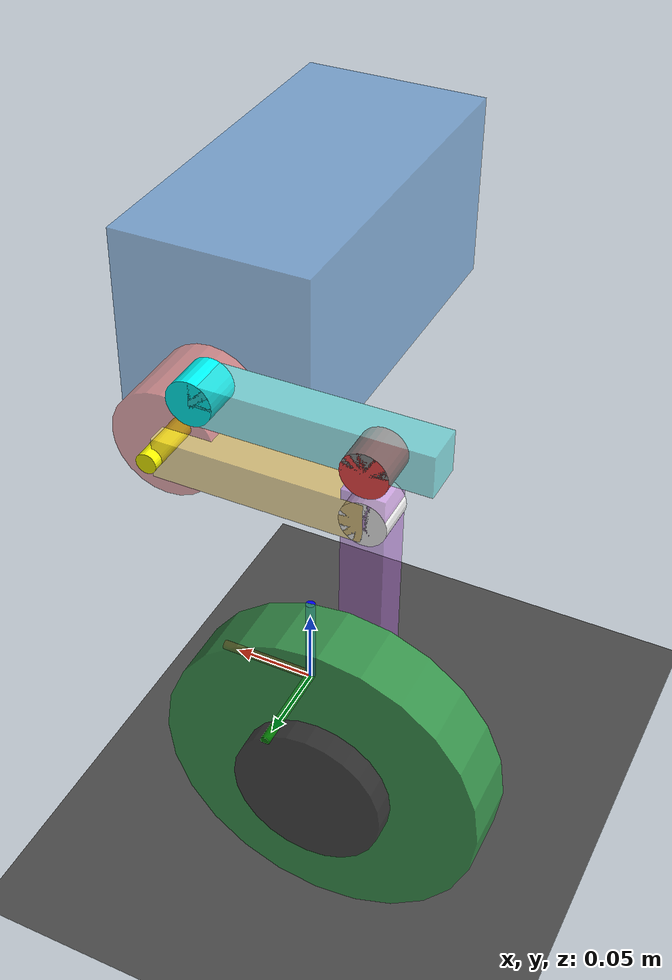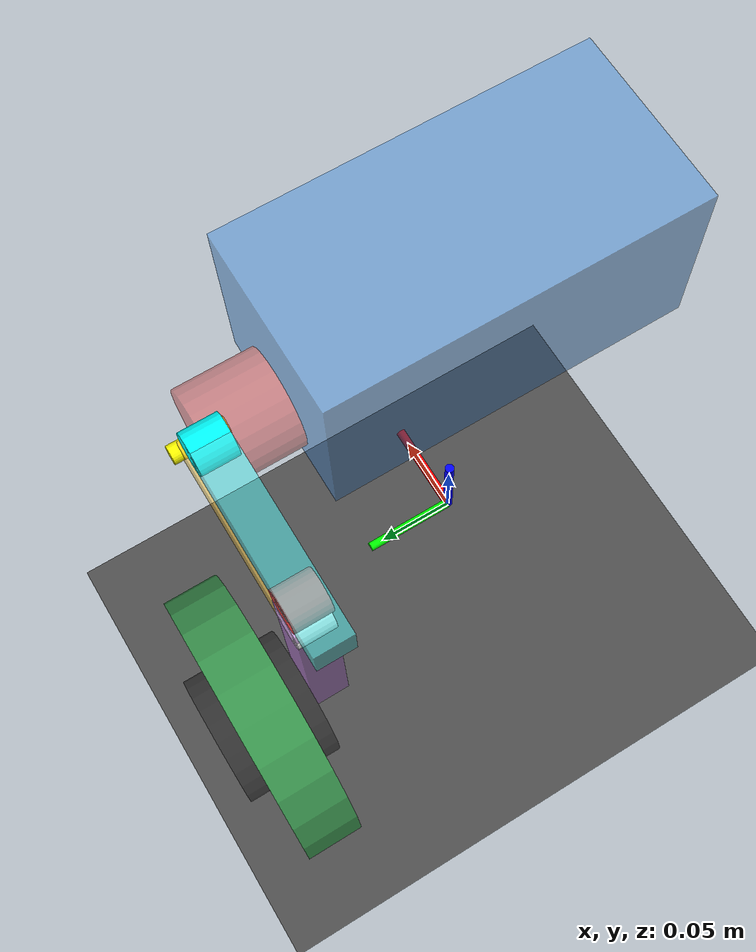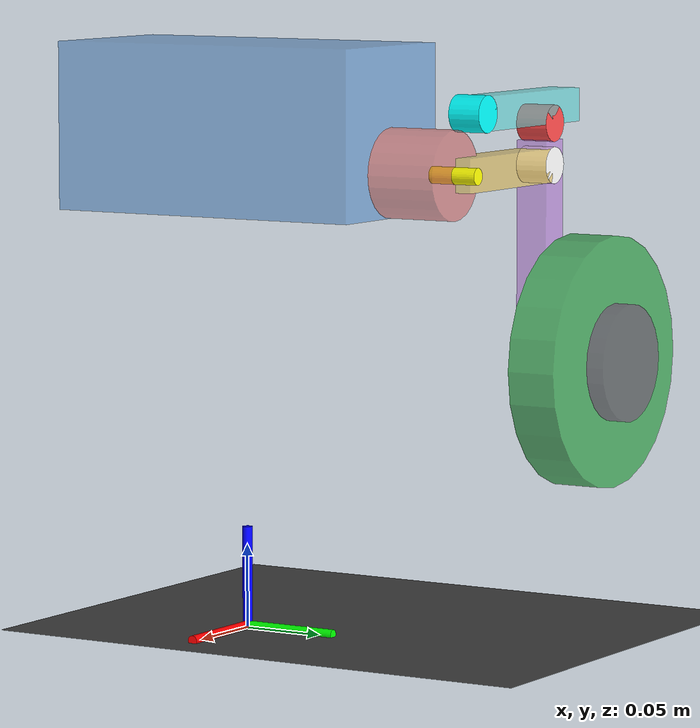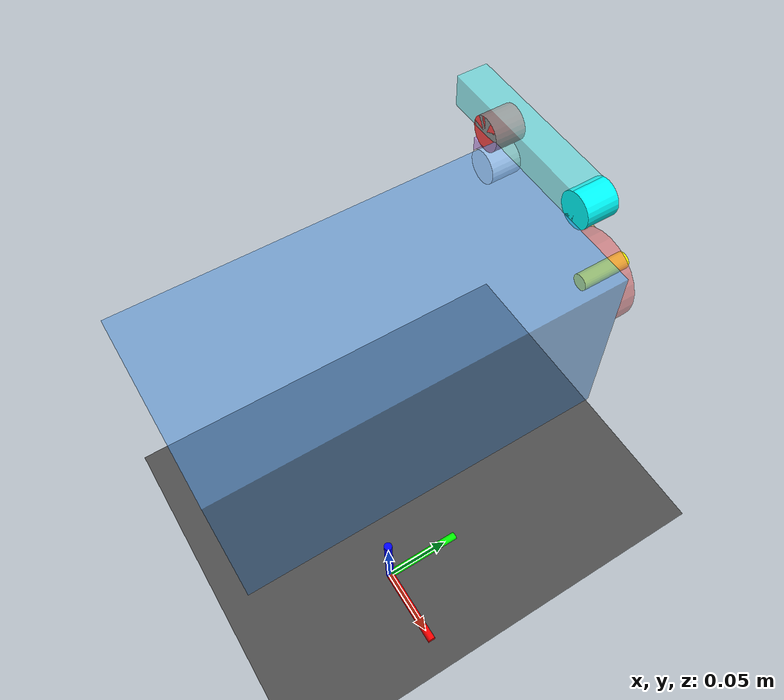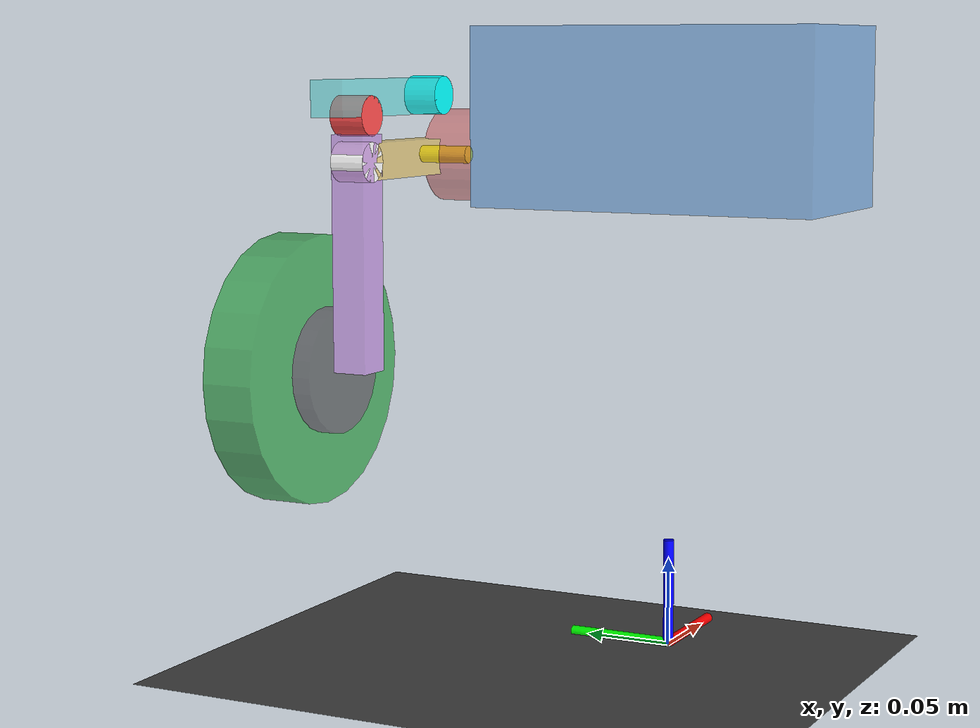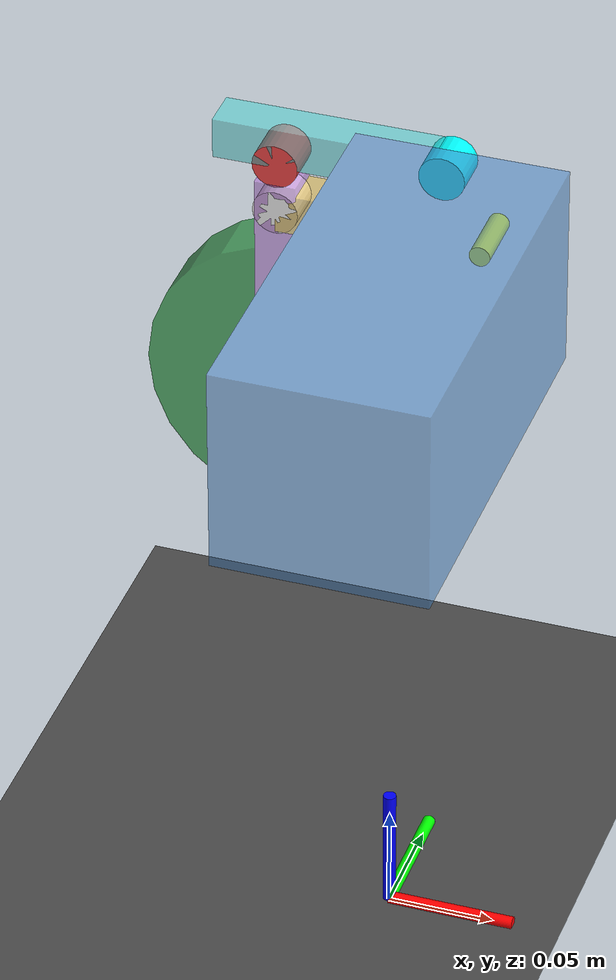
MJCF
<mujoco model="wheeled_leg_robot_drop">

  <option gravity="0 0 -9.81" timestep="0.00005"/>

  <visual>
    <global offwidth="1280" offheight="720" azimuth="270" elevation="0"/>
  </visual>

  <worldbody>

    <light name="main" pos="0 -1 1" dir="0 1 -1" diffuse="0.8 0.8 0.8"/>
    <light name="fill" pos="0  1 1" dir="0 -1 -1" diffuse="0.3 0.3 0.3"/>

    <!-- Ground plane — collides with wheel -->
    <geom name="ground" type="plane" pos="0 0 0" size="2 2 0.01"
          rgba="0.3 0.3 0.3 1" contype="1" conaffinity="1" friction="0.8 0.005 0.0001"/>

    <!-- XYZ axis markers at origin (visual only) -->
    <geom name="axis_x" type="cylinder" fromto="0 0 0.001  0.06 0 0.001"
          size="0.003" rgba="1 0 0 1" contype="0" conaffinity="0" mass="0"/>
    <geom name="axis_y" type="cylinder" fromto="0 0 0.001  0 0.06 0.001"
          size="0.003" rgba="0 1 0 1" contype="0" conaffinity="0" mass="0"/>
    <geom name="axis_z" type="cylinder" fromto="0 0 0.001  0 0 0.061"
          size="0.003" rgba="0 0 1 1" contype="0" conaffinity="0" mass="0"/>

    <!-- ── Body box — slides vertically only ──────────────────────────── -->
    <body name="box" pos="0 0 0.30">

      <!-- Vertical slide joint: 1 DOF up/down, rotation locked at 0 -->
      <joint name="body_slide" type="slide" axis="0 0 1" pos="0 0 0"/>

      <geom name="box_geom" type="box"
            size="0.05 0.10 0.05"
            rgba="0.29 0.56 0.85 0.55"
            contype="0" conaffinity="0"
            mass="0.477"/>

      <!-- Hip motor AK45-10: 260 g, Φ53 mm × 43 mm cylinder -->
      <geom name="motor_geom" type="cylinder"
            pos="0 0.1215 -0.0235"
            euler="90 0 0"
            size="0.0265 0.0215"
            rgba="0.87 0.36 0.36 0.55"
            contype="0" conaffinity="0"
            mass="0.260"/>

      <!-- ── Passive coupler pivot F ─────────────────────────────────── -->
      <!-- F = A + (−15 mm X, +2.5 mm Z) in box frame -->
      <body name="coupler" pos="-0.020 0.1430 0.01116">

        <joint name="hinge_F" type="hinge"
               axis="0 1 0"
               pos="0 0 0"
               damping="0.001"/>

        <!-- 608 bearing at F: OD=22 mm, width=7 mm -->
        <geom type="cylinder" pos="0 0 0" euler="90 0 0" size="0.011 0.010"
              rgba="0 1 1 0.9" contype="0" conaffinity="0" mass="0"/>
        <geom name="coupler_geom" type="box"
              pos="-0.055 0 0"
              size="0.055 0.01 0.01"
              rgba="0.30 0.90 0.90 0.55"
              contype="0" conaffinity="0"
              mass="0.015"/>

      </body><!-- coupler -->

      <!-- ── Femur ─────────────────────────────────────────────────────── -->
      <body name="femur" pos="0 0.1430 -0.0235">

        <joint name="hip" type="hinge"
               axis="0 1 0"
               pos="0 0 0"
               range="-180 180"
               armature="0.01"
               damping="0.05"/>

        <geom type="cylinder" pos="0 0 0" euler="90 0 0" size="0.005 0.015"
              rgba="1 1 0 0.9" contype="0" conaffinity="0" mass="0"/>
        <geom name="femur_geom" type="box"
              pos="-0.05 0 0"
              size="0.05 0.01 0.01"
              rgba="0.94 0.75 0.25 0.55"
              contype="0" conaffinity="0"
              mass="0.025"/>
        <!-- 608 bearing at C (knee): OD=22 mm, width=7 mm -->
        <geom type="cylinder" pos="-0.1 0 0" euler="90 0 0" size="0.011 0.010"
              rgba="1 1 1 0.9" contype="0" conaffinity="0" mass="0"/>

        <!-- ── Tibia ───────────────────────────────────────────────────── -->
        <body name="tibia" pos="-0.1 0 0">

          <joint name="knee_joint" type="hinge"
                 axis="0 1 0"
                 pos="0 0 0"
                 range="-180 180"
                 damping="0.001"/>

          <geom name="tibia_geom" type="box"
                pos="0 0 -0.05"
                size="0.01 0.01 0.065"
                rgba="0.75 0.45 0.90 0.55"
                contype="0" conaffinity="0"
                mass="0.035"/>
          <!-- 608 bearing at E (tibia–coupler): OD=22 mm, width=7 mm -->
          <geom type="cylinder" pos="0 0 0.025" euler="90 0 0" size="0.011 0.010"
                rgba="1 0.3 0.3 0.9" contype="0" conaffinity="0" mass="0"/>

          <!-- ── Wheel assembly ──────────────────────────────────────── -->
          <body name="wheel_asm" pos="0 0 -0.115">

            <joint name="wheel_spin" type="hinge"
                   axis="0 1 0"
                   pos="0 0 0"
                   damping="0.001"/>

            <!-- Maytech MTO7052 motor body: visual only -->
            <geom name="motor_body_geom" type="cylinder"
                  pos="0 0.036 0"
                  euler="90 0 0"
                  size="0.035 0.026"
                  rgba="0.15 0.15 0.15 0.55"
                  contype="0" conaffinity="0"
                  mass="0.380"/>

            <!-- TPU wheel tyre: Ø150 mm × 30 mm — collides with ground -->
            <!-- friction: sliding=0.8, rolling=0.01, spin=0.001 (TPU on hard floor) -->
            <!-- solref: 10ms time constant, critically damped (no bounce) -->
            <geom name="wheel_tire_geom" type="cylinder"
                  pos="0 0.036 0"
                  euler="90 0 0"
                  size="0.075 0.015"
                  rgba="0.25 0.70 0.35 0.80"
                  contype="1" conaffinity="1"
                  friction="0.8 0.01 0.001"
                  solref="0.01 1.0"
                  solimp="0.9 0.99 0.001"
                  mass="0.030"/>

          </body><!-- wheel_asm -->

        </body><!-- tibia -->

      </body><!-- femur -->

    </body><!-- box -->

  </worldbody>

  <!-- 4-bar closure: coupler tip E → tibia at E. eq_data anchors set in Python. -->
  <equality>
    <connect name="4bar_close" body1="coupler" body2="tibia" anchor="0.11 0 0"
             solref="0.0005 1" solimp="0.9999 0.9999 0.001"/>
  </equality>

  <!-- Torque actuator: PD-to-torque control implemented in Python -->
  <actuator>
    <motor name="hip_motor" joint="hip" ctrlrange="-7.0 7.0" gear="1"/>
  </actuator>

  <!-- Camera: side view -->
  <statistic center="0 0 0.30" extent="0.75"/>

</mujoco>
